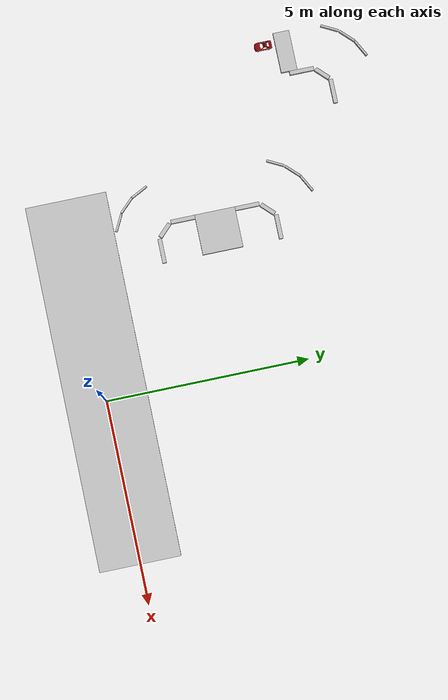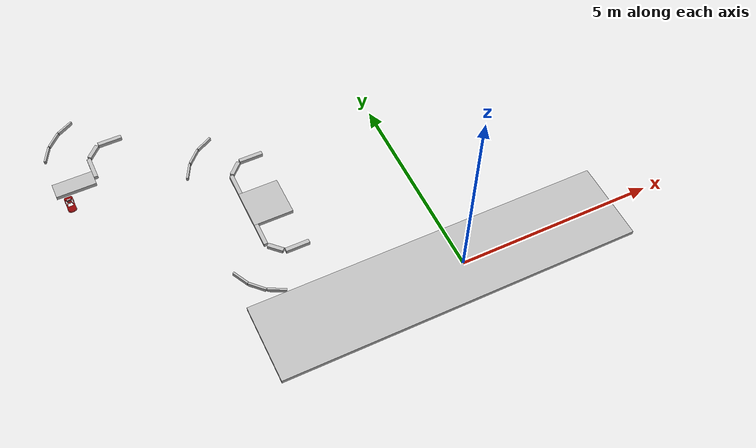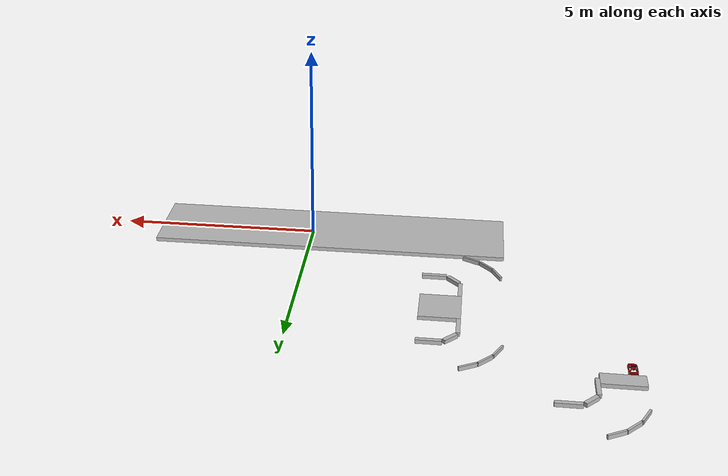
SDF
<sdf version="1.6">
 <world name="default">
  <model name="ground">
   <link name="body">
    <collision name="geom">
     <geometry><plane><normal>0 0 1</normal></plane></geometry>
     <surface><friction><ode><mu>100</mu><mu2>50</mu2></ode></friction></surface>
    </collision>
   </link>
   <static>true</static>
  </model>
  <include><uri>model://sun</uri></include>
  <include><uri>model://AutoNOMOS_mini_ideal</uri><pose>-7.75 5.5 0 0 0 -1.5707</pose></include>
  <model name="box_straight_9">
   <static>true</static>
   <pose>-3.5 3.5 0.05 0 0 0</pose>
   <link name="link">
    <visual name="visual"><geometry><box><size>1 1 .1</size></box></geometry></visual>
    <collision name="collision"><geometry><box><size>1 1 .1</size></box></geometry></collision>
   </link>
  </model>
  <model name="box_corner_7_0">
   <static>true</static>
   <pose>-3.78 4.78 0.05 0 0 2.35619</pose>
   <link name="link">
    <visual name="visual"><geometry><box><size>.1 .4 .1</size></box></geometry></visual>
    <collision name="collision"><geometry><box><size>.1 .4 .1</size></box></geometry></collision>
   </link>
  </model>
  <model name="box_corner_7_1">
   <static>true</static>
   <pose>-3.95 4.3 0.05 0 0 0</pose>
   <link name="link">
    <visual name="visual"><geometry><box><size>.1 .6 .1</size></box></geometry></visual>
    <collision name="collision"><geometry><box><size>.1 .6 .1</size></box></geometry></collision>
   </link>
  </model>
  <model name="box_corner_7_2">
   <static>true</static>
   <pose>-3.3 4.95 0.05 0 0 1.570796</pose>
   <link name="link">
    <visual name="visual"><geometry><box><size>.1 .6 .1</size></box></geometry></visual>
    <collision name="collision"><geometry><box><size>.1 .6 .1</size></box></geometry></collision>
   </link>
  </model>
  <model name="box_corner_8_0">
   <static>true</static>
   <pose>-3.78 2.22 0.05 0 0 0.785398</pose>
   <link name="link">
    <visual name="visual"><geometry><box><size>.1 .4 .1</size></box></geometry></visual>
    <collision name="collision"><geometry><box><size>.1 .4 .1</size></box></geometry></collision>
   </link>
  </model>
  <model name="box_corner_8_1">
   <static>true</static>
   <pose>-3.95 2.7 0.05 0 0 0</pose>
   <link name="link">
    <visual name="visual"><geometry><box><size>.1 .6 .1</size></box></geometry></visual>
    <collision name="collision"><geometry><box><size>.1 .6 .1</size></box></geometry></collision>
   </link>
  </model>
  <model name="box_corner_8_2">
   <static>true</static>
   <pose>-3.3 2.05 0.05 0 0 1.570796</pose>
   <link name="link">
    <visual name="visual"><geometry><box><size>.1 .6 .1</size></box></geometry></visual>
    <collision name="collision"><geometry><box><size>.1 .6 .1</size></box></geometry></collision>
   </link>
  </model>
  <model name="box_straight_10">
   <static>true</static>
   <pose>-.5 0 0.05 0 0 0</pose>
   <link name="link">
    <visual name="visual"><geometry><box><size>9 2 .1</size></box></geometry></visual>
    <collision name="collision"><geometry><box><size>9 2 .1</size></box></geometry></collision>
   </link>
  </model>
  <model name="box_corner_outside_2_0">
   <static>true</static>
   <pose>-4.191091 1.16 0.05 0 0 1.098683</pose>
   <link name="link">
    <visual name="visual"><geometry><box><size>.05 .45 .1</size></box></geometry></visual>
    <collision name="collision"><geometry><box><size>.05 .45 .1</size></box></geometry></collision>
   </link>
  </model>
  <model name="box_corner_outside_2_1">
   <static>true</static>
   <pose>-4.57 1.43 0.05 0 0 0.768573653</pose>
   <link name="link">
    <visual name="visual"><geometry><box><size>.05 .45 .1</size></box></geometry></visual>
    <collision name="collision"><geometry><box><size>.05 .45 .1</size></box></geometry></collision>
   </link>
  </model>
  <model name="box_corner_outside_2_2">
   <static>true</static>
   <pose>-4.83 1.80 0.05 0 0 0.472112653</pose>
   <link name="link">
    <visual name="visual"><geometry><box><size>.05 .45 .1</size></box></geometry></visual>
    <collision name="collision"><geometry><box><size>.05 .45 .1</size></box></geometry></collision>
   </link>
  </model>
  <model name="box_corner_outside_4_0">
   <static>true</static>
   <pose>-4.2 5.84 0.05 0 0 2.057117</pose>
   <link name="link">
    <visual name="visual"><geometry><box><size>.05 .45 .1</size></box></geometry></visual>
    <collision name="collision"><geometry><box><size>.05 .45 .1</size></box></geometry></collision>
   </link>
  </model>
  <model name="box_corner_outside_4_1">
   <static>true</static>
   <pose>-4.57 5.57 0.05 0 0 2.363034</pose>
   <link name="link">
    <visual name="visual"><geometry><box><size>.05 .45 .1</size></box></geometry></visual>
    <collision name="collision"><geometry><box><size>.05 .45 .1</size></box></geometry></collision>
   </link>
  </model>
  <model name="box_corner_outside_4_2">
   <static>true</static>
   <pose>-4.85 5.19 0.05 0 0 2.662849654</pose>
   <link name="link">
    <visual name="visual"><geometry><box><size>.05 .45 .1</size></box></geometry></visual>
    <collision name="collision"><geometry><box><size>.05 .45 .1</size></box></geometry></collision>
   </link>
  </model>
  <model name="box_corner_11_0">
   <static>true</static>
   <pose>-6.78 6.78 0.05 0 0 2.35619</pose>
   <link name="link">
    <visual name="visual"><geometry><box><size>.1 .4 .1</size></box></geometry></visual>
    <collision name="collision"><geometry><box><size>.1 .4 .1</size></box></geometry></collision>
   </link>
  </model>
  <model name="box_corner_11_1">
   <static>true</static>
   <pose>-6.95 6.3 0.05 0 0 0</pose>
   <link name="link">
    <visual name="visual"><geometry><box><size>.1 .6 .1</size></box></geometry></visual>
    <collision name="collision"><geometry><box><size>.1 .6 .1</size></box></geometry></collision>
   </link>
  </model>
  <model name="box_corner_11_2">
   <static>true</static>
   <pose>-6.3 6.95 0.05 0 0 1.570796</pose>
   <link name="link">
    <visual name="visual"><geometry><box><size>.1 .6 .1</size></box></geometry></visual>
    <collision name="collision"><geometry><box><size>.1 .6 .1</size></box></geometry></collision>
   </link>
  </model>
  <model name="box_corner_outside_7_0">
   <static>true</static>
   <pose>-7.2 7.84 0.05 0 0 2.057117</pose>
   <link name="link">
    <visual name="visual"><geometry><box><size>.05 .45 .1</size></box></geometry></visual>
    <collision name="collision"><geometry><box><size>.05 .45 .1</size></box></geometry></collision>
   </link>
  </model>
  <model name="box_corner_outside_7_1">
   <static>true</static>
   <pose>-7.57 7.57 0.05 0 0 2.363034</pose>
   <link name="link">
    <visual name="visual"><geometry><box><size>.05 .45 .1</size></box></geometry></visual>
    <collision name="collision"><geometry><box><size>.05 .45 .1</size></box></geometry></collision>
   </link>
  </model>
  <model name="box_corner_outside_7_2">
   <static>true</static>
   <pose>-7.85 7.19 0.05 0 0 2.662849654</pose>
   <link name="link">
    <visual name="visual"><geometry><box><size>.05 .45 .1</size></box></geometry></visual>
    <collision name="collision"><geometry><box><size>.05 .45 .1</size></box></geometry></collision>
   </link>
  </model>
  <model name="stop_box">
   <static>true</static>
   <pose>-7.5 6 0.05 0 0 0</pose>
   <link name="link">
    <visual name="visual"><geometry><box><size>1 .4 .1</size></box></geometry></visual>
    <collision name="collision"><geometry><box><size>1 .4 .1</size></box></geometry></collision>
   </link>
  </model>
 </world>
</sdf>
